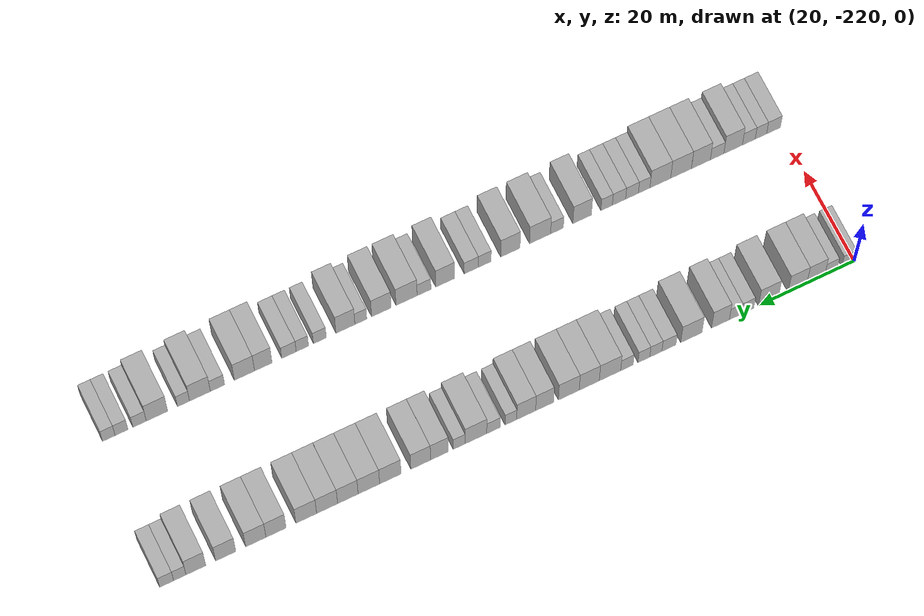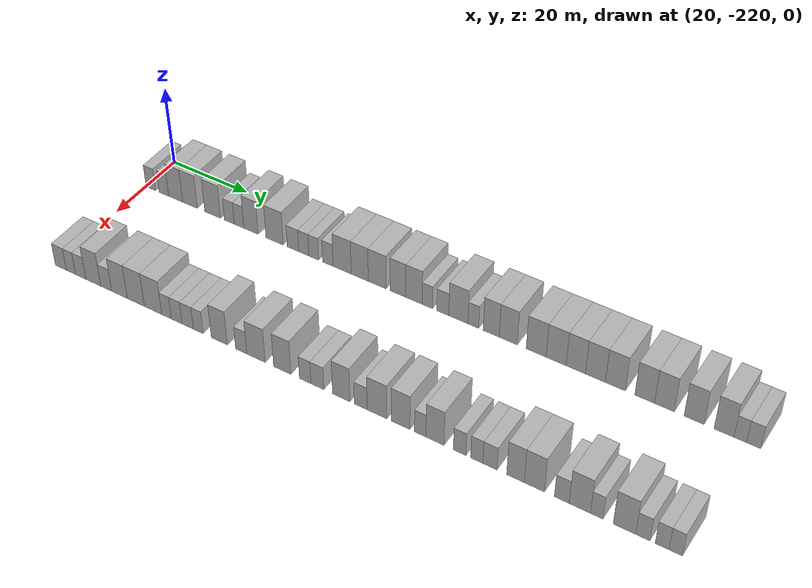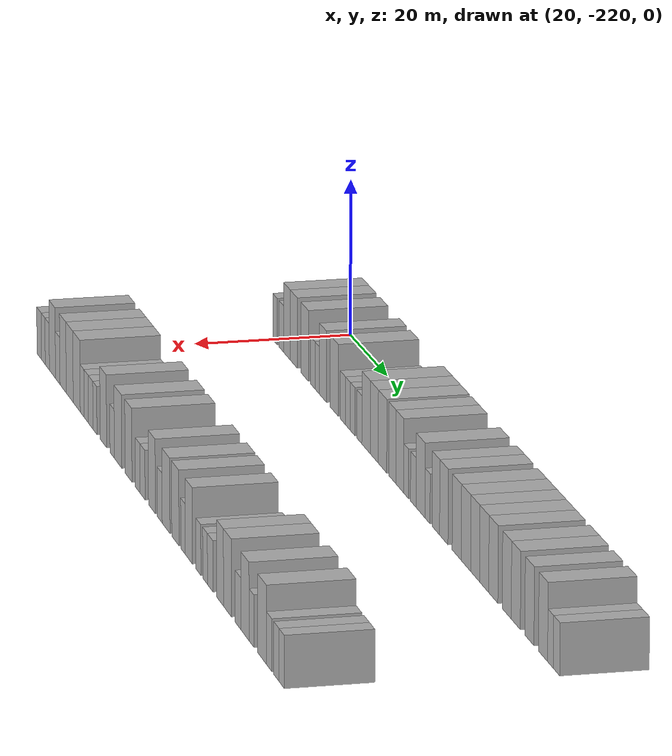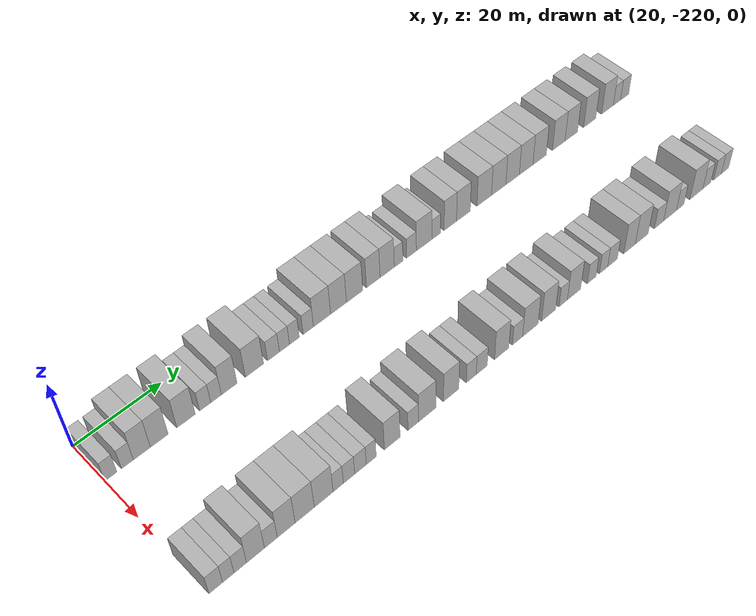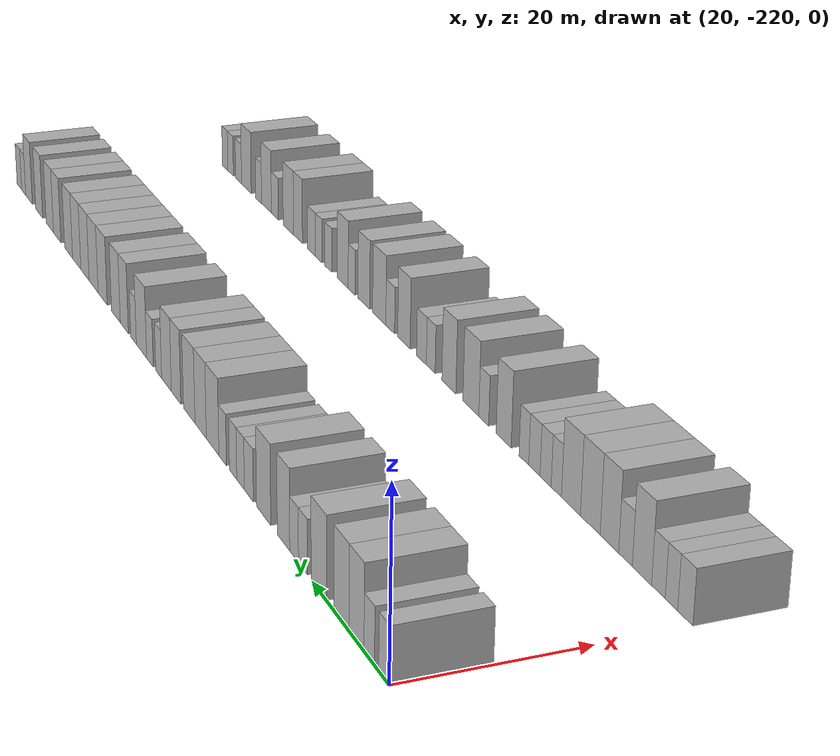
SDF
<sdf version="1.6">
 <world name="default">
  <model name="building_1">
   <static>1</static>
   <pose>25.0000 -218.6890 0 0.000000 0.000000 0.000000</pose>
   <link name="link">
    <pose>0 0 3.00 0 0 0</pose>
    <collision name="collision"><geometry><box><size>10.0000 2.6220 6.0000</size></box></geometry></collision>
    <visual name="visual">
     <cast_shadows>0</cast_shadows>
     <geometry><box><size>10.0000 2.6220 6.0000</size></box></geometry>
     <material>
      <script>
       <uri>model://HANNAS_wall/materials/scripts</uri>
       <uri>model://HANNAS_wall/materials/textures</uri>
       <name>vrc/HANNAS_wall</name>
      </script>
     </material>
    </visual>
   </link>
  </model>
  <model name="building_2">
   <static>1</static>
   <pose>25.0000 -215.0693 0 0.000000 0.000000 0.000000</pose>
   <link name="link">
    <pose>0 0 3.00 0 0 0</pose>
    <collision name="collision"><geometry><box><size>10.0000 2.6174 6.0000</size></box></geometry></collision>
    <visual name="visual">
     <cast_shadows>0</cast_shadows>
     <geometry><box><size>10.0000 2.6174 6.0000</size></box></geometry>
     <material>
      <script>
       <uri>model://HANNAS_wall/materials/scripts</uri>
       <uri>model://HANNAS_wall/materials/textures</uri>
       <name>vrc/HANNAS_wall</name>
      </script>
     </material>
    </visual>
   </link>
  </model>
  <model name="building_3">
   <static>1</static>
   <pose>25.0000 -211.8674 0 0.000000 0.000000 0.000000</pose>
   <link name="link">
    <pose>0 0 4.50 0 0 0</pose>
    <collision name="collision"><geometry><box><size>10.0000 3.7865 9.0000</size></box></geometry></collision>
    <visual name="visual">
     <cast_shadows>0</cast_shadows>
     <geometry><box><size>10.0000 3.7865 9.0000</size></box></geometry>
     <material>
      <script>
       <uri>model://HANNAS_wall/materials/scripts</uri>
       <uri>model://HANNAS_wall/materials/textures</uri>
       <name>vrc/HANNAS_wall</name>
      </script>
     </material>
    </visual>
   </link>
  </model>
  <model name="building_4">
   <static>1</static>
   <pose>25.0000 -207.9781 0 0.000000 0.000000 0.000000</pose>
   <link name="link">
    <pose>0 0 4.50 0 0 0</pose>
    <collision name="collision"><geometry><box><size>10.0000 3.9921 9.0000</size></box></geometry></collision>
    <visual name="visual">
     <cast_shadows>0</cast_shadows>
     <geometry><box><size>10.0000 3.9921 9.0000</size></box></geometry>
     <material>
      <script>
       <uri>model://HANNAS_wall/materials/scripts</uri>
       <uri>model://HANNAS_wall/materials/textures</uri>
       <name>vrc/HANNAS_wall</name>
      </script>
     </material>
    </visual>
   </link>
  </model>
  <model name="building_5">
   <static>1</static>
   <pose>25.0000 -201.8589 0 0.000000 0.000000 0.000000</pose>
   <link name="link">
    <pose>0 0 4.50 0 0 0</pose>
    <collision name="collision"><geometry><box><size>10.0000 4.2463 9.0000</size></box></geometry></collision>
    <visual name="visual">
     <cast_shadows>0</cast_shadows>
     <geometry><box><size>10.0000 4.2463 9.0000</size></box></geometry>
     <material>
      <script>
       <uri>model://HANNAS_wall/materials/scripts</uri>
       <uri>model://HANNAS_wall/materials/textures</uri>
       <name>vrc/HANNAS_wall</name>
      </script>
     </material>
    </visual>
   </link>
  </model>
  <model name="building_6">
   <static>1</static>
   <pose>25.0000 -197.4302 0 0.000000 0.000000 0.000000</pose>
   <link name="link">
    <pose>0 0 3.00 0 0 0</pose>
    <collision name="collision"><geometry><box><size>10.0000 2.6111 6.0000</size></box></geometry></collision>
    <visual name="visual">
     <cast_shadows>0</cast_shadows>
     <geometry><box><size>10.0000 2.6111 6.0000</size></box></geometry>
     <material>
      <script>
       <uri>model://HANNAS_wall/materials/scripts</uri>
       <uri>model://HANNAS_wall/materials/textures</uri>
       <name>vrc/HANNAS_wall</name>
      </script>
     </material>
    </visual>
   </link>
  </model>
  <model name="building_7">
   <static>1</static>
   <pose>25.0000 -194.8632 0 0.000000 0.000000 0.000000</pose>
   <link name="link">
    <pose>0 0 3.00 0 0 0</pose>
    <collision name="collision"><geometry><box><size>10.0000 2.5228 6.0000</size></box></geometry></collision>
    <visual name="visual">
     <cast_shadows>0</cast_shadows>
     <geometry><box><size>10.0000 2.5228 6.0000</size></box></geometry>
     <material>
      <script>
       <uri>model://HANNAS_wall/materials/scripts</uri>
       <uri>model://HANNAS_wall/materials/textures</uri>
       <name>vrc/HANNAS_wall</name>
      </script>
     </material>
    </visual>
   </link>
  </model>
  <model name="building_8">
   <static>1</static>
   <pose>25.0000 -191.7290 0 0.000000 0.000000 0.000000</pose>
   <link name="link">
    <pose>0 0 4.50 0 0 0</pose>
    <collision name="collision"><geometry><box><size>10.0000 3.7457 9.0000</size></box></geometry></collision>
    <visual name="visual">
     <cast_shadows>0</cast_shadows>
     <geometry><box><size>10.0000 3.7457 9.0000</size></box></geometry>
     <material>
      <script>
       <uri>model://HANNAS_wall/materials/scripts</uri>
       <uri>model://HANNAS_wall/materials/textures</uri>
       <name>vrc/HANNAS_wall</name>
      </script>
     </material>
    </visual>
   </link>
  </model>
  <model name="building_9">
   <static>1</static>
   <pose>25.0000 -185.6247 0 0.000000 0.000000 0.000000</pose>
   <link name="link">
    <pose>0 0 4.50 0 0 0</pose>
    <collision name="collision"><geometry><box><size>10.0000 4.4628 9.0000</size></box></geometry></collision>
    <visual name="visual">
     <cast_shadows>0</cast_shadows>
     <geometry><box><size>10.0000 4.4628 9.0000</size></box></geometry>
     <material>
      <script>
       <uri>model://HANNAS_wall/materials/scripts</uri>
       <uri>model://HANNAS_wall/materials/textures</uri>
       <name>vrc/HANNAS_wall</name>
      </script>
     </material>
    </visual>
   </link>
  </model>
  <model name="building_10">
   <static>1</static>
   <pose>25.0000 -180.9236 0 0.000000 0.000000 0.000000</pose>
   <link name="link">
    <pose>0 0 3.00 0 0 0</pose>
    <collision name="collision"><geometry><box><size>10.0000 2.9394 6.0000</size></box></geometry></collision>
    <visual name="visual">
     <cast_shadows>0</cast_shadows>
     <geometry><box><size>10.0000 2.9394 6.0000</size></box></geometry>
     <material>
      <script>
       <uri>model://HANNAS_wall/materials/scripts</uri>
       <uri>model://HANNAS_wall/materials/textures</uri>
       <name>vrc/HANNAS_wall</name>
      </script>
     </material>
    </visual>
   </link>
  </model>
  <model name="building_11">
   <static>1</static>
   <pose>25.0000 -178.1855 0 0.000000 0.000000 0.000000</pose>
   <link name="link">
    <pose>0 0 3.00 0 0 0</pose>
    <collision name="collision"><geometry><box><size>10.0000 2.5367 6.0000</size></box></geometry></collision>
    <visual name="visual">
     <cast_shadows>0</cast_shadows>
     <geometry><box><size>10.0000 2.5367 6.0000</size></box></geometry>
     <material>
      <script>
       <uri>model://HANNAS_wall/materials/scripts</uri>
       <uri>model://HANNAS_wall/materials/textures</uri>
       <name>vrc/HANNAS_wall</name>
      </script>
     </material>
    </visual>
   </link>
  </model>
  <model name="building_12">
   <static>1</static>
   <pose>25.0000 -175.6837 0 0.000000 0.000000 0.000000</pose>
   <link name="link">
    <pose>0 0 3.00 0 0 0</pose>
    <collision name="collision"><geometry><box><size>10.0000 2.4669 6.0000</size></box></geometry></collision>
    <visual name="visual">
     <cast_shadows>0</cast_shadows>
     <geometry><box><size>10.0000 2.4669 6.0000</size></box></geometry>
     <material>
      <script>
       <uri>model://HANNAS_wall/materials/scripts</uri>
       <uri>model://HANNAS_wall/materials/textures</uri>
       <name>vrc/HANNAS_wall</name>
      </script>
     </material>
    </visual>
   </link>
  </model>
  <model name="building_13">
   <static>1</static>
   <pose>25.0000 -172.1369 0 0.000000 0.000000 0.000000</pose>
   <link name="link">
    <pose>0 0 3.00 0 0 0</pose>
    <collision name="collision"><geometry><box><size>10.0000 2.6267 6.0000</size></box></geometry></collision>
    <visual name="visual">
     <cast_shadows>0</cast_shadows>
     <geometry><box><size>10.0000 2.6267 6.0000</size></box></geometry>
     <material>
      <script>
       <uri>model://HANNAS_wall/materials/scripts</uri>
       <uri>model://HANNAS_wall/materials/textures</uri>
       <name>vrc/HANNAS_wall</name>
      </script>
     </material>
    </visual>
   </link>
  </model>
  <model name="building_14">
   <static>1</static>
   <pose>25.0000 -168.6002 0 0.000000 0.000000 0.000000</pose>
   <link name="link">
    <pose>0 0 4.50 0 0 0</pose>
    <collision name="collision"><geometry><box><size>10.0000 4.4468 9.0000</size></box></geometry></collision>
    <visual name="visual">
     <cast_shadows>0</cast_shadows>
     <geometry><box><size>10.0000 4.4468 9.0000</size></box></geometry>
     <material>
      <script>
       <uri>model://HANNAS_wall/materials/scripts</uri>
       <uri>model://HANNAS_wall/materials/textures</uri>
       <name>vrc/HANNAS_wall</name>
      </script>
     </material>
    </visual>
   </link>
  </model>
  <model name="building_15">
   <static>1</static>
   <pose>25.0000 -164.2904 0 0.000000 0.000000 0.000000</pose>
   <link name="link">
    <pose>0 0 4.50 0 0 0</pose>
    <collision name="collision"><geometry><box><size>10.0000 4.1727 9.0000</size></box></geometry></collision>
    <visual name="visual">
     <cast_shadows>0</cast_shadows>
     <geometry><box><size>10.0000 4.1727 9.0000</size></box></geometry>
     <material>
      <script>
       <uri>model://HANNAS_wall/materials/scripts</uri>
       <uri>model://HANNAS_wall/materials/textures</uri>
       <name>vrc/HANNAS_wall</name>
      </script>
     </material>
    </visual>
   </link>
  </model>
  <model name="building_16">
   <static>1</static>
   <pose>25.0000 -160.0362 0 0.000000 0.000000 0.000000</pose>
   <link name="link">
    <pose>0 0 4.50 0 0 0</pose>
    <collision name="collision"><geometry><box><size>10.0000 4.3358 9.0000</size></box></geometry></collision>
    <visual name="visual">
     <cast_shadows>0</cast_shadows>
     <geometry><box><size>10.0000 4.3358 9.0000</size></box></geometry>
     <material>
      <script>
       <uri>model://HANNAS_wall/materials/scripts</uri>
       <uri>model://HANNAS_wall/materials/textures</uri>
       <name>vrc/HANNAS_wall</name>
      </script>
     </material>
    </visual>
   </link>
  </model>
  <model name="building_17">
   <static>1</static>
   <pose>25.0000 -155.0106 0 0.000000 0.000000 0.000000</pose>
   <link name="link">
    <pose>0 0 4.50 0 0 0</pose>
    <collision name="collision"><geometry><box><size>10.0000 3.7152 9.0000</size></box></geometry></collision>
    <visual name="visual">
     <cast_shadows>0</cast_shadows>
     <geometry><box><size>10.0000 3.7152 9.0000</size></box></geometry>
     <material>
      <script>
       <uri>model://HANNAS_wall/materials/scripts</uri>
       <uri>model://HANNAS_wall/materials/textures</uri>
       <name>vrc/HANNAS_wall</name>
      </script>
     </material>
    </visual>
   </link>
  </model>
  <model name="building_18">
   <static>1</static>
   <pose>25.0000 -151.1939 0 0.000000 0.000000 0.000000</pose>
   <link name="link">
    <pose>0 0 4.50 0 0 0</pose>
    <collision name="collision"><geometry><box><size>10.0000 3.9182 9.0000</size></box></geometry></collision>
    <visual name="visual">
     <cast_shadows>0</cast_shadows>
     <geometry><box><size>10.0000 3.9182 9.0000</size></box></geometry>
     <material>
      <script>
       <uri>model://HANNAS_wall/materials/scripts</uri>
       <uri>model://HANNAS_wall/materials/textures</uri>
       <name>vrc/HANNAS_wall</name>
      </script>
     </material>
    </visual>
   </link>
  </model>
  <model name="building_19">
   <static>1</static>
   <pose>25.0000 -148.0293 0 0.000000 0.000000 0.000000</pose>
   <link name="link">
    <pose>0 0 3.00 0 0 0</pose>
    <collision name="collision"><geometry><box><size>10.0000 2.4110 6.0000</size></box></geometry></collision>
    <visual name="visual">
     <cast_shadows>0</cast_shadows>
     <geometry><box><size>10.0000 2.4110 6.0000</size></box></geometry>
     <material>
      <script>
       <uri>model://HANNAS_wall/materials/scripts</uri>
       <uri>model://HANNAS_wall/materials/textures</uri>
       <name>vrc/HANNAS_wall</name>
      </script>
     </material>
    </visual>
   </link>
  </model>
  <model name="building_20">
   <static>1</static>
   <pose>25.0000 -144.4328 0 0.000000 0.000000 0.000000</pose>
   <link name="link">
    <pose>0 0 3.00 0 0 0</pose>
    <collision name="collision"><geometry><box><size>10.0000 2.7820 6.0000</size></box></geometry></collision>
    <visual name="visual">
     <cast_shadows>0</cast_shadows>
     <geometry><box><size>10.0000 2.7820 6.0000</size></box></geometry>
     <material>
      <script>
       <uri>model://HANNAS_wall/materials/scripts</uri>
       <uri>model://HANNAS_wall/materials/textures</uri>
       <name>vrc/HANNAS_wall</name>
      </script>
     </material>
    </visual>
   </link>
  </model>
  <model name="building_21">
   <static>1</static>
   <pose>25.0000 -140.8264 0 0.000000 0.000000 0.000000</pose>
   <link name="link">
    <pose>0 0 4.50 0 0 0</pose>
    <collision name="collision"><geometry><box><size>10.0000 4.4308 9.0000</size></box></geometry></collision>
    <visual name="visual">
     <cast_shadows>0</cast_shadows>
     <geometry><box><size>10.0000 4.4308 9.0000</size></box></geometry>
     <material>
      <script>
       <uri>model://HANNAS_wall/materials/scripts</uri>
       <uri>model://HANNAS_wall/materials/textures</uri>
       <name>vrc/HANNAS_wall</name>
      </script>
     </material>
    </visual>
   </link>
  </model>
  <model name="building_22">
   <static>1</static>
   <pose>25.0000 -137.3676 0 0.000000 0.000000 0.000000</pose>
   <link name="link">
    <pose>0 0 3.00 0 0 0</pose>
    <collision name="collision"><geometry><box><size>10.0000 2.4869 6.0000</size></box></geometry></collision>
    <visual name="visual">
     <cast_shadows>0</cast_shadows>
     <geometry><box><size>10.0000 2.4869 6.0000</size></box></geometry>
     <material>
      <script>
       <uri>model://HANNAS_wall/materials/scripts</uri>
       <uri>model://HANNAS_wall/materials/textures</uri>
       <name>vrc/HANNAS_wall</name>
      </script>
     </material>
    </visual>
   </link>
  </model>
  <model name="building_23">
   <static>1</static>
   <pose>25.0000 -133.2943 0 0.000000 0.000000 0.000000</pose>
   <link name="link">
    <pose>0 0 4.50 0 0 0</pose>
    <collision name="collision"><geometry><box><size>10.0000 3.6598 9.0000</size></box></geometry></collision>
    <visual name="visual">
     <cast_shadows>0</cast_shadows>
     <geometry><box><size>10.0000 3.6598 9.0000</size></box></geometry>
     <material>
      <script>
       <uri>model://HANNAS_wall/materials/scripts</uri>
       <uri>model://HANNAS_wall/materials/textures</uri>
       <name>vrc/HANNAS_wall</name>
      </script>
     </material>
    </visual>
   </link>
  </model>
  <model name="building_24">
   <static>1</static>
   <pose>25.0000 -129.4338 0 0.000000 0.000000 0.000000</pose>
   <link name="link">
    <pose>0 0 4.50 0 0 0</pose>
    <collision name="collision"><geometry><box><size>10.0000 4.0611 9.0000</size></box></geometry></collision>
    <visual name="visual">
     <cast_shadows>0</cast_shadows>
     <geometry><box><size>10.0000 4.0611 9.0000</size></box></geometry>
     <material>
      <script>
       <uri>model://HANNAS_wall/materials/scripts</uri>
       <uri>model://HANNAS_wall/materials/textures</uri>
       <name>vrc/HANNAS_wall</name>
      </script>
     </material>
    </visual>
   </link>
  </model>
  <model name="building_25">
   <static>1</static>
   <pose>25.0000 -123.2111 0 0.000000 0.000000 0.000000</pose>
   <link name="link">
    <pose>0 0 4.50 0 0 0</pose>
    <collision name="collision"><geometry><box><size>10.0000 4.3843 9.0000</size></box></geometry></collision>
    <visual name="visual">
     <cast_shadows>0</cast_shadows>
     <geometry><box><size>10.0000 4.3843 9.0000</size></box></geometry>
     <material>
      <script>
       <uri>model://HANNAS_wall/materials/scripts</uri>
       <uri>model://HANNAS_wall/materials/textures</uri>
       <name>vrc/HANNAS_wall</name>
      </script>
     </material>
    </visual>
   </link>
  </model>
  <model name="building_26">
   <static>1</static>
   <pose>25.0000 -118.8185 0 0.000000 0.000000 0.000000</pose>
   <link name="link">
    <pose>0 0 4.50 0 0 0</pose>
    <collision name="collision"><geometry><box><size>10.0000 4.4011 9.0000</size></box></geometry></collision>
    <visual name="visual">
     <cast_shadows>0</cast_shadows>
     <geometry><box><size>10.0000 4.4011 9.0000</size></box></geometry>
     <material>
      <script>
       <uri>model://HANNAS_wall/materials/scripts</uri>
       <uri>model://HANNAS_wall/materials/textures</uri>
       <name>vrc/HANNAS_wall</name>
      </script>
     </material>
    </visual>
   </link>
  </model>
  <model name="building_27">
   <static>1</static>
   <pose>25.0000 -114.5217 0 0.000000 0.000000 0.000000</pose>
   <link name="link">
    <pose>0 0 4.50 0 0 0</pose>
    <collision name="collision"><geometry><box><size>10.0000 4.1925 9.0000</size></box></geometry></collision>
    <visual name="visual">
     <cast_shadows>0</cast_shadows>
     <geometry><box><size>10.0000 4.1925 9.0000</size></box></geometry>
     <material>
      <script>
       <uri>model://HANNAS_wall/materials/scripts</uri>
       <uri>model://HANNAS_wall/materials/textures</uri>
       <name>vrc/HANNAS_wall</name>
      </script>
     </material>
    </visual>
   </link>
  </model>
  <model name="building_28">
   <static>1</static>
   <pose>25.0000 -110.2871 0 0.000000 0.000000 0.000000</pose>
   <link name="link">
    <pose>0 0 4.50 0 0 0</pose>
    <collision name="collision"><geometry><box><size>10.0000 4.2766 9.0000</size></box></geometry></collision>
    <visual name="visual">
     <cast_shadows>0</cast_shadows>
     <geometry><box><size>10.0000 4.2766 9.0000</size></box></geometry>
     <material>
      <script>
       <uri>model://HANNAS_wall/materials/scripts</uri>
       <uri>model://HANNAS_wall/materials/textures</uri>
       <name>vrc/HANNAS_wall</name>
      </script>
     </material>
    </visual>
   </link>
  </model>
  <model name="building_29">
   <static>1</static>
   <pose>25.0000 -106.0344 0 0.000000 0.000000 0.000000</pose>
   <link name="link">
    <pose>0 0 4.50 0 0 0</pose>
    <collision name="collision"><geometry><box><size>10.0000 4.2290 9.0000</size></box></geometry></collision>
    <visual name="visual">
     <cast_shadows>0</cast_shadows>
     <geometry><box><size>10.0000 4.2290 9.0000</size></box></geometry>
     <material>
      <script>
       <uri>model://HANNAS_wall/materials/scripts</uri>
       <uri>model://HANNAS_wall/materials/textures</uri>
       <name>vrc/HANNAS_wall</name>
      </script>
     </material>
    </visual>
   </link>
  </model>
  <model name="building_30">
   <static>1</static>
   <pose>25.0000 -99.8776 0 0.000000 0.000000 0.000000</pose>
   <link name="link">
    <pose>0 0 4.50 0 0 0</pose>
    <collision name="collision"><geometry><box><size>10.0000 4.0846 9.0000</size></box></geometry></collision>
    <visual name="visual">
     <cast_shadows>0</cast_shadows>
     <geometry><box><size>10.0000 4.0846 9.0000</size></box></geometry>
     <material>
      <script>
       <uri>model://HANNAS_wall/materials/scripts</uri>
       <uri>model://HANNAS_wall/materials/textures</uri>
       <name>vrc/HANNAS_wall</name>
      </script>
     </material>
    </visual>
   </link>
  </model>
  <model name="building_31">
   <static>1</static>
   <pose>25.0000 -95.7782 0 0.000000 0.000000 0.000000</pose>
   <link name="link">
    <pose>0 0 4.50 0 0 0</pose>
    <collision name="collision"><geometry><box><size>10.0000 4.1142 9.0000</size></box></geometry></collision>
    <visual name="visual">
     <cast_shadows>0</cast_shadows>
     <geometry><box><size>10.0000 4.1142 9.0000</size></box></geometry>
     <material>
      <script>
       <uri>model://HANNAS_wall/materials/scripts</uri>
       <uri>model://HANNAS_wall/materials/textures</uri>
       <name>vrc/HANNAS_wall</name>
      </script>
     </material>
    </visual>
   </link>
  </model>
  <model name="building_32">
   <static>1</static>
   <pose>25.0000 -89.6807 0 0.000000 0.000000 0.000000</pose>
   <link name="link">
    <pose>0 0 4.50 0 0 0</pose>
    <collision name="collision"><geometry><box><size>10.0000 4.0808 9.0000</size></box></geometry></collision>
    <visual name="visual">
     <cast_shadows>0</cast_shadows>
     <geometry><box><size>10.0000 4.0808 9.0000</size></box></geometry>
     <material>
      <script>
       <uri>model://HANNAS_wall/materials/scripts</uri>
       <uri>model://HANNAS_wall/materials/textures</uri>
       <name>vrc/HANNAS_wall</name>
      </script>
     </material>
    </visual>
   </link>
  </model>
  <model name="building_33">
   <static>1</static>
   <pose>25.0000 -83.6424 0 0.000000 0.000000 0.000000</pose>
   <link name="link">
    <pose>0 0 4.50 0 0 0</pose>
    <collision name="collision"><geometry><box><size>10.0000 3.9957 9.0000</size></box></geometry></collision>
    <visual name="visual">
     <cast_shadows>0</cast_shadows>
     <geometry><box><size>10.0000 3.9957 9.0000</size></box></geometry>
     <material>
      <script>
       <uri>model://HANNAS_wall/materials/scripts</uri>
       <uri>model://HANNAS_wall/materials/textures</uri>
       <name>vrc/HANNAS_wall</name>
      </script>
     </material>
    </visual>
   </link>
  </model>
  <model name="building_34">
   <static>1</static>
   <pose>25.0000 -80.4010 0 0.000000 0.000000 0.000000</pose>
   <link name="link">
    <pose>0 0 3.00 0 0 0</pose>
    <collision name="collision"><geometry><box><size>10.0000 2.4871 6.0000</size></box></geometry></collision>
    <visual name="visual">
     <cast_shadows>0</cast_shadows>
     <geometry><box><size>10.0000 2.4871 6.0000</size></box></geometry>
     <material>
      <script>
       <uri>model://HANNAS_wall/materials/scripts</uri>
       <uri>model://HANNAS_wall/materials/textures</uri>
       <name>vrc/HANNAS_wall</name>
      </script>
     </material>
    </visual>
   </link>
  </model>
  <model name="building_35">
   <static>1</static>
   <pose>25.0000 -77.7497 0 0.000000 0.000000 0.000000</pose>
   <link name="link">
    <pose>0 0 3.00 0 0 0</pose>
    <collision name="collision"><geometry><box><size>10.0000 2.8155 6.0000</size></box></geometry></collision>
    <visual name="visual">
     <cast_shadows>0</cast_shadows>
     <geometry><box><size>10.0000 2.8155 6.0000</size></box></geometry>
     <material>
      <script>
       <uri>model://HANNAS_wall/materials/scripts</uri>
       <uri>model://HANNAS_wall/materials/textures</uri>
       <name>vrc/HANNAS_wall</name>
      </script>
     </material>
    </visual>
   </link>
  </model>
  <model name="building_107">
   <static>1</static>
   <pose>55.0000 -218.5311 0 0.000000 0.000000 0.000000</pose>
   <link name="link">
    <pose>0 0 3.00 0 0 0</pose>
    <collision name="collision"><geometry><box><size>10.0000 2.9377 6.0000</size></box></geometry></collision>
    <visual name="visual">
     <cast_shadows>0</cast_shadows>
     <geometry><box><size>10.0000 2.9377 6.0000</size></box></geometry>
     <material>
      <script>
       <uri>model://HANNAS_wall/materials/scripts</uri>
       <uri>model://HANNAS_wall/materials/textures</uri>
       <name>vrc/HANNAS_wall</name>
      </script>
     </material>
    </visual>
   </link>
  </model>
  <model name="building_108">
   <static>1</static>
   <pose>55.0000 -215.8362 0 0.000000 0.000000 0.000000</pose>
   <link name="link">
    <pose>0 0 3.00 0 0 0</pose>
    <collision name="collision"><geometry><box><size>10.0000 2.4520 6.0000</size></box></geometry></collision>
    <visual name="visual">
     <cast_shadows>0</cast_shadows>
     <geometry><box><size>10.0000 2.4520 6.0000</size></box></geometry>
     <material>
      <script>
       <uri>model://HANNAS_wall/materials/scripts</uri>
       <uri>model://HANNAS_wall/materials/textures</uri>
       <name>vrc/HANNAS_wall</name>
      </script>
     </material>
    </visual>
   </link>
  </model>
  <model name="building_109">
   <static>1</static>
   <pose>55.0000 -213.2479 0 0.000000 0.000000 0.000000</pose>
   <link name="link">
    <pose>0 0 3.00 0 0 0</pose>
    <collision name="collision"><geometry><box><size>10.0000 2.7247 6.0000</size></box></geometry></collision>
    <visual name="visual">
     <cast_shadows>0</cast_shadows>
     <geometry><box><size>10.0000 2.7247 6.0000</size></box></geometry>
     <material>
      <script>
       <uri>model://HANNAS_wall/materials/scripts</uri>
       <uri>model://HANNAS_wall/materials/textures</uri>
       <name>vrc/HANNAS_wall</name>
      </script>
     </material>
    </visual>
   </link>
  </model>
  <model name="building_110">
   <static>1</static>
   <pose>55.0000 -209.9043 0 0.000000 0.000000 0.000000</pose>
   <link name="link">
    <pose>0 0 4.50 0 0 0</pose>
    <collision name="collision"><geometry><box><size>10.0000 3.9626 9.0000</size></box></geometry></collision>
    <visual name="visual">
     <cast_shadows>0</cast_shadows>
     <geometry><box><size>10.0000 3.9626 9.0000</size></box></geometry>
     <material>
      <script>
       <uri>model://HANNAS_wall/materials/scripts</uri>
       <uri>model://HANNAS_wall/materials/textures</uri>
       <name>vrc/HANNAS_wall</name>
      </script>
     </material>
    </visual>
   </link>
  </model>
  <model name="building_111">
   <static>1</static>
   <pose>55.0000 -206.4847 0 0.000000 0.000000 0.000000</pose>
   <link name="link">
    <pose>0 0 3.00 0 0 0</pose>
    <collision name="collision"><geometry><box><size>10.0000 2.8765 6.0000</size></box></geometry></collision>
    <visual name="visual">
     <cast_shadows>0</cast_shadows>
     <geometry><box><size>10.0000 2.8765 6.0000</size></box></geometry>
     <material>
      <script>
       <uri>model://HANNAS_wall/materials/scripts</uri>
       <uri>model://HANNAS_wall/materials/textures</uri>
       <name>vrc/HANNAS_wall</name>
      </script>
     </material>
    </visual>
   </link>
  </model>
  <model name="building_112">
   <static>1</static>
   <pose>55.0000 -203.0340 0 0.000000 0.000000 0.000000</pose>
   <link name="link">
    <pose>0 0 4.50 0 0 0</pose>
    <collision name="collision"><geometry><box><size>10.0000 4.0249 9.0000</size></box></geometry></collision>
    <visual name="visual">
     <cast_shadows>0</cast_shadows>
     <geometry><box><size>10.0000 4.0249 9.0000</size></box></geometry>
     <material>
      <script>
       <uri>model://HANNAS_wall/materials/scripts</uri>
       <uri>model://HANNAS_wall/materials/textures</uri>
       <name>vrc/HANNAS_wall</name>
      </script>
     </material>
    </visual>
   </link>
  </model>
  <model name="building_113">
   <static>1</static>
   <pose>55.0000 -198.8136 0 0.000000 0.000000 0.000000</pose>
   <link name="link">
    <pose>0 0 4.50 0 0 0</pose>
    <collision name="collision"><geometry><box><size>10.0000 4.4157 9.0000</size></box></geometry></collision>
    <visual name="visual">
     <cast_shadows>0</cast_shadows>
     <geometry><box><size>10.0000 4.4157 9.0000</size></box></geometry>
     <material>
      <script>
       <uri>model://HANNAS_wall/materials/scripts</uri>
       <uri>model://HANNAS_wall/materials/textures</uri>
       <name>vrc/HANNAS_wall</name>
      </script>
     </material>
    </visual>
   </link>
  </model>
  <model name="building_114">
   <static>1</static>
   <pose>55.0000 -194.4039 0 0.000000 0.000000 0.000000</pose>
   <link name="link">
    <pose>0 0 4.50 0 0 0</pose>
    <collision name="collision"><geometry><box><size>10.0000 4.4036 9.0000</size></box></geometry></collision>
    <visual name="visual">
     <cast_shadows>0</cast_shadows>
     <geometry><box><size>10.0000 4.4036 9.0000</size></box></geometry>
     <material>
      <script>
       <uri>model://HANNAS_wall/materials/scripts</uri>
       <uri>model://HANNAS_wall/materials/textures</uri>
       <name>vrc/HANNAS_wall</name>
      </script>
     </material>
    </visual>
   </link>
  </model>
  <model name="building_115">
   <static>1</static>
   <pose>55.0000 -190.9789 0 0.000000 0.000000 0.000000</pose>
   <link name="link">
    <pose>0 0 3.00 0 0 0</pose>
    <collision name="collision"><geometry><box><size>10.0000 2.4465 6.0000</size></box></geometry></collision>
    <visual name="visual">
     <cast_shadows>0</cast_shadows>
     <geometry><box><size>10.0000 2.4465 6.0000</size></box></geometry>
     <material>
      <script>
       <uri>model://HANNAS_wall/materials/scripts</uri>
       <uri>model://HANNAS_wall/materials/textures</uri>
       <name>vrc/HANNAS_wall</name>
      </script>
     </material>
    </visual>
   </link>
  </model>
  <model name="building_116">
   <static>1</static>
   <pose>55.0000 -188.4057 0 0.000000 0.000000 0.000000</pose>
   <link name="link">
    <pose>0 0 3.00 0 0 0</pose>
    <collision name="collision"><geometry><box><size>10.0000 2.6999 6.0000</size></box></geometry></collision>
    <visual name="visual">
     <cast_shadows>0</cast_shadows>
     <geometry><box><size>10.0000 2.6999 6.0000</size></box></geometry>
     <material>
      <script>
       <uri>model://HANNAS_wall/materials/scripts</uri>
       <uri>model://HANNAS_wall/materials/textures</uri>
       <name>vrc/HANNAS_wall</name>
      </script>
     </material>
    </visual>
   </link>
  </model>
  <model name="building_117">
   <static>1</static>
   <pose>55.0000 -185.6540 0 0.000000 0.000000 0.000000</pose>
   <link name="link">
    <pose>0 0 3.00 0 0 0</pose>
    <collision name="collision"><geometry><box><size>10.0000 2.8034 6.0000</size></box></geometry></collision>
    <visual name="visual">
     <cast_shadows>0</cast_shadows>
     <geometry><box><size>10.0000 2.8034 6.0000</size></box></geometry>
     <material>
      <script>
       <uri>model://HANNAS_wall/materials/scripts</uri>
       <uri>model://HANNAS_wall/materials/textures</uri>
       <name>vrc/HANNAS_wall</name>
      </script>
     </material>
    </visual>
   </link>
  </model>
  <model name="building_118">
   <static>1</static>
   <pose>55.0000 -183.0364 0 0.000000 0.000000 0.000000</pose>
   <link name="link">
    <pose>0 0 3.00 0 0 0</pose>
    <collision name="collision"><geometry><box><size>10.0000 2.4318 6.0000</size></box></geometry></collision>
    <visual name="visual">
     <cast_shadows>0</cast_shadows>
     <geometry><box><size>10.0000 2.4318 6.0000</size></box></geometry>
     <material>
      <script>
       <uri>model://HANNAS_wall/materials/scripts</uri>
       <uri>model://HANNAS_wall/materials/textures</uri>
       <name>vrc/HANNAS_wall</name>
      </script>
     </material>
    </visual>
   </link>
  </model>
  <model name="building_119">
   <static>1</static>
   <pose>55.0000 -177.8584 0 0.000000 0.000000 0.000000</pose>
   <link name="link">
    <pose>0 0 4.50 0 0 0</pose>
    <collision name="collision"><geometry><box><size>10.0000 3.9243 9.0000</size></box></geometry></collision>
    <visual name="visual">
     <cast_shadows>0</cast_shadows>
     <geometry><box><size>10.0000 3.9243 9.0000</size></box></geometry>
     <material>
      <script>
       <uri>model://HANNAS_wall/materials/scripts</uri>
       <uri>model://HANNAS_wall/materials/textures</uri>
       <name>vrc/HANNAS_wall</name>
      </script>
     </material>
    </visual>
   </link>
  </model>
  <model name="building_120">
   <static>1</static>
   <pose>55.0000 -172.5569 0 0.000000 0.000000 0.000000</pose>
   <link name="link">
    <pose>0 0 3.00 0 0 0</pose>
    <collision name="collision"><geometry><box><size>10.0000 2.6786 6.0000</size></box></geometry></collision>
    <visual name="visual">
     <cast_shadows>0</cast_shadows>
     <geometry><box><size>10.0000 2.6786 6.0000</size></box></geometry>
     <material>
      <script>
       <uri>model://HANNAS_wall/materials/scripts</uri>
       <uri>model://HANNAS_wall/materials/textures</uri>
       <name>vrc/HANNAS_wall</name>
      </script>
     </material>
    </visual>
   </link>
  </model>
  <model name="building_121">
   <static>1</static>
   <pose>55.0000 -169.0034 0 0.000000 0.000000 0.000000</pose>
   <link name="link">
    <pose>0 0 4.50 0 0 0</pose>
    <collision name="collision"><geometry><box><size>10.0000 4.4286 9.0000</size></box></geometry></collision>
    <visual name="visual">
     <cast_shadows>0</cast_shadows>
     <geometry><box><size>10.0000 4.4286 9.0000</size></box></geometry>
     <material>
      <script>
       <uri>model://HANNAS_wall/materials/scripts</uri>
       <uri>model://HANNAS_wall/materials/textures</uri>
       <name>vrc/HANNAS_wall</name>
      </script>
     </material>
    </visual>
   </link>
  </model>
  <model name="building_122">
   <static>1</static>
   <pose>55.0000 -162.7590 0 0.000000 0.000000 0.000000</pose>
   <link name="link">
    <pose>0 0 4.50 0 0 0</pose>
    <collision name="collision"><geometry><box><size>10.0000 4.0602 9.0000</size></box></geometry></collision>
    <visual name="visual">
     <cast_shadows>0</cast_shadows>
     <geometry><box><size>10.0000 4.0602 9.0000</size></box></geometry>
     <material>
      <script>
       <uri>model://HANNAS_wall/materials/scripts</uri>
       <uri>model://HANNAS_wall/materials/textures</uri>
       <name>vrc/HANNAS_wall</name>
      </script>
     </material>
    </visual>
   </link>
  </model>
  <model name="building_123">
   <static>1</static>
   <pose>55.0000 -157.4041 0 0.000000 0.000000 0.000000</pose>
   <link name="link">
    <pose>0 0 3.00 0 0 0</pose>
    <collision name="collision"><geometry><box><size>10.0000 2.6496 6.0000</size></box></geometry></collision>
    <visual name="visual">
     <cast_shadows>0</cast_shadows>
     <geometry><box><size>10.0000 2.6496 6.0000</size></box></geometry>
     <material>
      <script>
       <uri>model://HANNAS_wall/materials/scripts</uri>
       <uri>model://HANNAS_wall/materials/textures</uri>
       <name>vrc/HANNAS_wall</name>
      </script>
     </material>
    </visual>
   </link>
  </model>
  <model name="building_124">
   <static>1</static>
   <pose>55.0000 -154.5848 0 0.000000 0.000000 0.000000</pose>
   <link name="link">
    <pose>0 0 3.00 0 0 0</pose>
    <collision name="collision"><geometry><box><size>10.0000 2.9889 6.0000</size></box></geometry></collision>
    <visual name="visual">
     <cast_shadows>0</cast_shadows>
     <geometry><box><size>10.0000 2.9889 6.0000</size></box></geometry>
     <material>
      <script>
       <uri>model://HANNAS_wall/materials/scripts</uri>
       <uri>model://HANNAS_wall/materials/textures</uri>
       <name>vrc/HANNAS_wall</name>
      </script>
     </material>
    </visual>
   </link>
  </model>
  <model name="building_125">
   <static>1</static>
   <pose>55.0000 -149.1215 0 0.000000 0.000000 0.000000</pose>
   <link name="link">
    <pose>0 0 4.50 0 0 0</pose>
    <collision name="collision"><geometry><box><size>10.0000 3.9377 9.0000</size></box></geometry></collision>
    <visual name="visual">
     <cast_shadows>0</cast_shadows>
     <geometry><box><size>10.0000 3.9377 9.0000</size></box></geometry>
     <material>
      <script>
       <uri>model://HANNAS_wall/materials/scripts</uri>
       <uri>model://HANNAS_wall/materials/textures</uri>
       <name>vrc/HANNAS_wall</name>
      </script>
     </material>
    </visual>
   </link>
  </model>
  <model name="building_126">
   <static>1</static>
   <pose>55.0000 -144.7119 0 0.000000 0.000000 0.000000</pose>
   <link name="link">
    <pose>0 0 3.00 0 0 0</pose>
    <collision name="collision"><geometry><box><size>10.0000 2.8813 6.0000</size></box></geometry></collision>
    <visual name="visual">
     <cast_shadows>0</cast_shadows>
     <geometry><box><size>10.0000 2.8813 6.0000</size></box></geometry>
     <material>
      <script>
       <uri>model://HANNAS_wall/materials/scripts</uri>
       <uri>model://HANNAS_wall/materials/textures</uri>
       <name>vrc/HANNAS_wall</name>
      </script>
     </material>
    </visual>
   </link>
  </model>
  <model name="building_127">
   <static>1</static>
   <pose>55.0000 -141.0699 0 0.000000 0.000000 0.000000</pose>
   <link name="link">
    <pose>0 0 4.50 0 0 0</pose>
    <collision name="collision"><geometry><box><size>10.0000 4.4027 9.0000</size></box></geometry></collision>
    <visual name="visual">
     <cast_shadows>0</cast_shadows>
     <geometry><box><size>10.0000 4.4027 9.0000</size></box></geometry>
     <material>
      <script>
       <uri>model://HANNAS_wall/materials/scripts</uri>
       <uri>model://HANNAS_wall/materials/textures</uri>
       <name>vrc/HANNAS_wall</name>
      </script>
     </material>
    </visual>
   </link>
  </model>
  <model name="building_128">
   <static>1</static>
   <pose>55.0000 -135.8374 0 0.000000 0.000000 0.000000</pose>
   <link name="link">
    <pose>0 0 4.50 0 0 0</pose>
    <collision name="collision"><geometry><box><size>10.0000 4.0624 9.0000</size></box></geometry></collision>
    <visual name="visual">
     <cast_shadows>0</cast_shadows>
     <geometry><box><size>10.0000 4.0624 9.0000</size></box></geometry>
     <material>
      <script>
       <uri>model://HANNAS_wall/materials/scripts</uri>
       <uri>model://HANNAS_wall/materials/textures</uri>
       <name>vrc/HANNAS_wall</name>
      </script>
     </material>
    </visual>
   </link>
  </model>
  <model name="building_129">
   <static>1</static>
   <pose>55.0000 -131.5754 0 0.000000 0.000000 0.000000</pose>
   <link name="link">
    <pose>0 0 3.00 0 0 0</pose>
    <collision name="collision"><geometry><box><size>10.0000 2.4618 6.0000</size></box></geometry></collision>
    <visual name="visual">
     <cast_shadows>0</cast_shadows>
     <geometry><box><size>10.0000 2.4618 6.0000</size></box></geometry>
     <material>
      <script>
       <uri>model://HANNAS_wall/materials/scripts</uri>
       <uri>model://HANNAS_wall/materials/textures</uri>
       <name>vrc/HANNAS_wall</name>
      </script>
     </material>
    </visual>
   </link>
  </model>
  <model name="building_130">
   <static>1</static>
   <pose>55.0000 -128.3814 0 0.000000 0.000000 0.000000</pose>
   <link name="link">
    <pose>0 0 4.50 0 0 0</pose>
    <collision name="collision"><geometry><box><size>10.0000 3.9261 9.0000</size></box></geometry></collision>
    <visual name="visual">
     <cast_shadows>0</cast_shadows>
     <geometry><box><size>10.0000 3.9261 9.0000</size></box></geometry>
     <material>
      <script>
       <uri>model://HANNAS_wall/materials/scripts</uri>
       <uri>model://HANNAS_wall/materials/textures</uri>
       <name>vrc/HANNAS_wall</name>
      </script>
     </material>
    </visual>
   </link>
  </model>
  <model name="building_131">
   <static>1</static>
   <pose>55.0000 -123.0860 0 0.000000 0.000000 0.000000</pose>
   <link name="link">
    <pose>0 0 3.00 0 0 0</pose>
    <collision name="collision"><geometry><box><size>10.0000 2.6647 6.0000</size></box></geometry></collision>
    <visual name="visual">
     <cast_shadows>0</cast_shadows>
     <geometry><box><size>10.0000 2.6647 6.0000</size></box></geometry>
     <material>
      <script>
       <uri>model://HANNAS_wall/materials/scripts</uri>
       <uri>model://HANNAS_wall/materials/textures</uri>
       <name>vrc/HANNAS_wall</name>
      </script>
     </material>
    </visual>
   </link>
  </model>
  <model name="building_132">
   <static>1</static>
   <pose>55.0000 -119.4823 0 0.000000 0.000000 0.000000</pose>
   <link name="link">
    <pose>0 0 3.00 0 0 0</pose>
    <collision name="collision"><geometry><box><size>10.0000 2.5428 6.0000</size></box></geometry></collision>
    <visual name="visual">
     <cast_shadows>0</cast_shadows>
     <geometry><box><size>10.0000 2.5428 6.0000</size></box></geometry>
     <material>
      <script>
       <uri>model://HANNAS_wall/materials/scripts</uri>
       <uri>model://HANNAS_wall/materials/textures</uri>
       <name>vrc/HANNAS_wall</name>
      </script>
     </material>
    </visual>
   </link>
  </model>
  <model name="building_133">
   <static>1</static>
   <pose>55.0000 -116.7150 0 0.000000 0.000000 0.000000</pose>
   <link name="link">
    <pose>0 0 3.00 0 0 0</pose>
    <collision name="collision"><geometry><box><size>10.0000 2.9918 6.0000</size></box></geometry></collision>
    <visual name="visual">
     <cast_shadows>0</cast_shadows>
     <geometry><box><size>10.0000 2.9918 6.0000</size></box></geometry>
     <material>
      <script>
       <uri>model://HANNAS_wall/materials/scripts</uri>
       <uri>model://HANNAS_wall/materials/textures</uri>
       <name>vrc/HANNAS_wall</name>
      </script>
     </material>
    </visual>
   </link>
  </model>
  <model name="building_134">
   <static>1</static>
   <pose>55.0000 -111.4153 0 0.000000 0.000000 0.000000</pose>
   <link name="link">
    <pose>0 0 4.50 0 0 0</pose>
    <collision name="collision"><geometry><box><size>10.0000 3.6076 9.0000</size></box></geometry></collision>
    <visual name="visual">
     <cast_shadows>0</cast_shadows>
     <geometry><box><size>10.0000 3.6076 9.0000</size></box></geometry>
     <material>
      <script>
       <uri>model://HANNAS_wall/materials/scripts</uri>
       <uri>model://HANNAS_wall/materials/textures</uri>
       <name>vrc/HANNAS_wall</name>
      </script>
     </material>
    </visual>
   </link>
  </model>
  <model name="building_135">
   <static>1</static>
   <pose>55.0000 -107.5407 0 0.000000 0.000000 0.000000</pose>
   <link name="link">
    <pose>0 0 4.50 0 0 0</pose>
    <collision name="collision"><geometry><box><size>10.0000 4.1416 9.0000</size></box></geometry></collision>
    <visual name="visual">
     <cast_shadows>0</cast_shadows>
     <geometry><box><size>10.0000 4.1416 9.0000</size></box></geometry>
     <material>
      <script>
       <uri>model://HANNAS_wall/materials/scripts</uri>
       <uri>model://HANNAS_wall/materials/textures</uri>
       <name>vrc/HANNAS_wall</name>
      </script>
     </material>
    </visual>
   </link>
  </model>
  <model name="building_136">
   <static>1</static>
   <pose>55.0000 -101.9971 0 0.000000 0.000000 0.000000</pose>
   <link name="link">
    <pose>0 0 3.00 0 0 0</pose>
    <collision name="collision"><geometry><box><size>10.0000 2.9456 6.0000</size></box></geometry></collision>
    <visual name="visual">
     <cast_shadows>0</cast_shadows>
     <geometry><box><size>10.0000 2.9456 6.0000</size></box></geometry>
     <material>
      <script>
       <uri>model://HANNAS_wall/materials/scripts</uri>
       <uri>model://HANNAS_wall/materials/textures</uri>
       <name>vrc/HANNAS_wall</name>
      </script>
     </material>
    </visual>
   </link>
  </model>
  <model name="building_137">
   <static>1</static>
   <pose>55.0000 -98.3993 0 0.000000 0.000000 0.000000</pose>
   <link name="link">
    <pose>0 0 4.50 0 0 0</pose>
    <collision name="collision"><geometry><box><size>10.0000 4.2501 9.0000</size></box></geometry></collision>
    <visual name="visual">
     <cast_shadows>0</cast_shadows>
     <geometry><box><size>10.0000 4.2501 9.0000</size></box></geometry>
     <material>
      <script>
       <uri>model://HANNAS_wall/materials/scripts</uri>
       <uri>model://HANNAS_wall/materials/textures</uri>
       <name>vrc/HANNAS_wall</name>
      </script>
     </material>
    </visual>
   </link>
  </model>
  <model name="building_138">
   <static>1</static>
   <pose>55.0000 -95.0356 0 0.000000 0.000000 0.000000</pose>
   <link name="link">
    <pose>0 0 3.00 0 0 0</pose>
    <collision name="collision"><geometry><box><size>10.0000 2.4773 6.0000</size></box></geometry></collision>
    <visual name="visual">
     <cast_shadows>0</cast_shadows>
     <geometry><box><size>10.0000 2.4773 6.0000</size></box></geometry>
     <material>
      <script>
       <uri>model://HANNAS_wall/materials/scripts</uri>
       <uri>model://HANNAS_wall/materials/textures</uri>
       <name>vrc/HANNAS_wall</name>
      </script>
     </material>
    </visual>
   </link>
  </model>
  <model name="building_139">
   <static>1</static>
   <pose>55.0000 -89.6150 0 0.000000 0.000000 0.000000</pose>
   <link name="link">
    <pose>0 0 4.50 0 0 0</pose>
    <collision name="collision"><geometry><box><size>10.0000 4.3640 9.0000</size></box></geometry></collision>
    <visual name="visual">
     <cast_shadows>0</cast_shadows>
     <geometry><box><size>10.0000 4.3640 9.0000</size></box></geometry>
     <material>
      <script>
       <uri>model://HANNAS_wall/materials/scripts</uri>
       <uri>model://HANNAS_wall/materials/textures</uri>
       <name>vrc/HANNAS_wall</name>
      </script>
     </material>
    </visual>
   </link>
  </model>
  <model name="building_140">
   <static>1</static>
   <pose>55.0000 -86.0656 0 0.000000 0.000000 0.000000</pose>
   <link name="link">
    <pose>0 0 3.00 0 0 0</pose>
    <collision name="collision"><geometry><box><size>10.0000 2.7347 6.0000</size></box></geometry></collision>
    <visual name="visual">
     <cast_shadows>0</cast_shadows>
     <geometry><box><size>10.0000 2.7347 6.0000</size></box></geometry>
     <material>
      <script>
       <uri>model://HANNAS_wall/materials/scripts</uri>
       <uri>model://HANNAS_wall/materials/textures</uri>
       <name>vrc/HANNAS_wall</name>
      </script>
     </material>
    </visual>
   </link>
  </model>
  <model name="building_141">
   <static>1</static>
   <pose>55.0000 -82.3838 0 0.000000 0.000000 0.000000</pose>
   <link name="link">
    <pose>0 0 3.00 0 0 0</pose>
    <collision name="collision"><geometry><box><size>10.0000 2.6288 6.0000</size></box></geometry></collision>
    <visual name="visual">
     <cast_shadows>0</cast_shadows>
     <geometry><box><size>10.0000 2.6288 6.0000</size></box></geometry>
     <material>
      <script>
       <uri>model://HANNAS_wall/materials/scripts</uri>
       <uri>model://HANNAS_wall/materials/textures</uri>
       <name>vrc/HANNAS_wall</name>
      </script>
     </material>
    </visual>
   </link>
  </model>
  <model name="building_142">
   <static>1</static>
   <pose>55.0000 -79.7912 0 0.000000 0.000000 0.000000</pose>
   <link name="link">
    <pose>0 0 3.00 0 0 0</pose>
    <collision name="collision"><geometry><box><size>10.0000 2.5564 6.0000</size></box></geometry></collision>
    <visual name="visual">
     <cast_shadows>0</cast_shadows>
     <geometry><box><size>10.0000 2.5564 6.0000</size></box></geometry>
     <material>
      <script>
       <uri>model://HANNAS_wall/materials/scripts</uri>
       <uri>model://HANNAS_wall/materials/textures</uri>
       <name>vrc/HANNAS_wall</name>
      </script>
     </material>
    </visual>
   </link>
  </model>
 </world>
</sdf>
